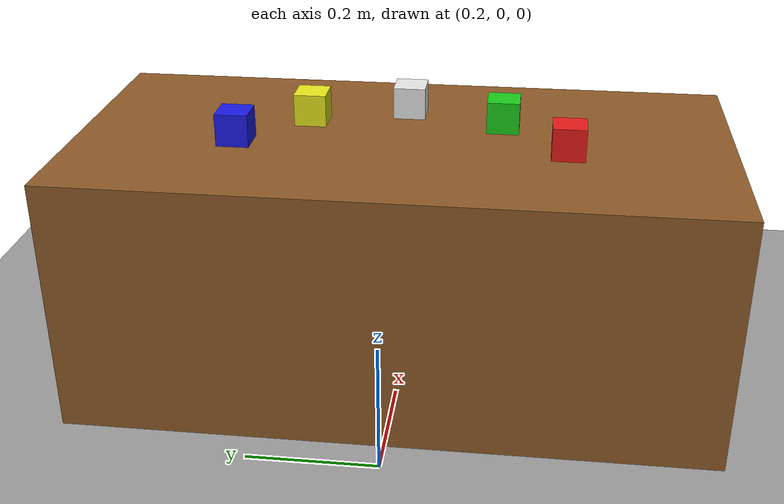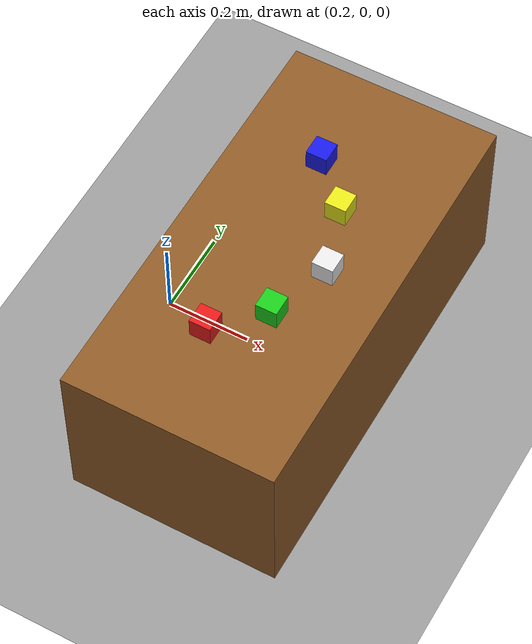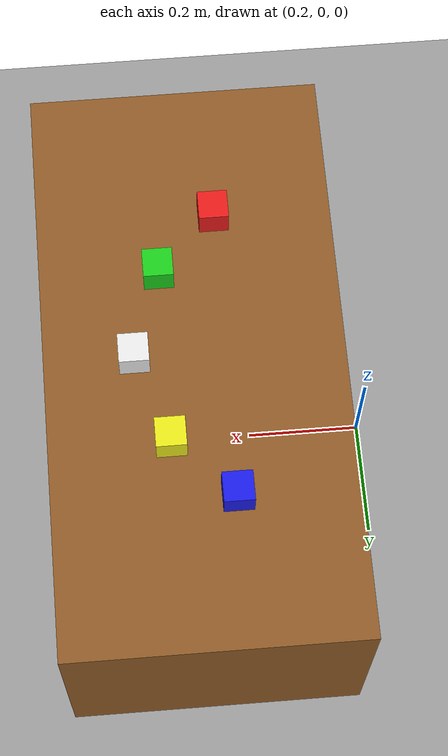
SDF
<?xml version="1.0" ?>
<sdf version="1.9">
  <world name="langrobot_basic">

    <physics name="1ms" type="ignored">
      <max_step_size>0.001</max_step_size>
      <real_time_factor>1.0</real_time_factor>
    </physics>

    <plugin
      filename="gz-sim-physics-system"
      name="gz::sim::systems::Physics"/>
    <plugin
      filename="gz-sim-sensors-system"
      name="gz::sim::systems::Sensors">
      <render_engine>ogre2</render_engine>
    </plugin>
    <plugin
      filename="gz-sim-scene-broadcaster-system"
      name="gz::sim::systems::SceneBroadcaster"/>
    <plugin
      filename="gz-sim-user-commands-system"
      name="gz::sim::systems::UserCommands"/>

    <light type="directional" name="sun">
      <cast_shadows>true</cast_shadows>
      <pose>0 0 10 0 0 0</pose>
      <diffuse>0.8 0.8 0.8 1</diffuse>
      <specular>0.2 0.2 0.2 1</specular>
      <attenuation>
        <range>1000</range>
        <constant>0.9</constant>
        <linear>0.01</linear>
        <quadratic>0.001</quadratic>
      </attenuation>
      <direction>-0.5 0.1 -0.9</direction>
    </light>

    <model name="ground_plane">
      <static>true</static>
      <link name="link">
        <collision name="collision">
          <geometry>
            <plane><normal>0 0 1</normal><size>10 10</size></plane>
          </geometry>
        </collision>
        <visual name="visual">
          <geometry>
            <plane><normal>0 0 1</normal><size>10 10</size></plane>
          </geometry>
          <material>
            <ambient>0.6 0.6 0.6 1</ambient>
            <diffuse>0.6 0.6 0.6 1</diffuse>
          </material>
        </visual>
      </link>
    </model>

    <!-- ── Table ─────────────────────────────────────────────────────────── -->
    <!-- Solid oak-coloured box. Centre at (0.5, 0, 0.2); top surface at z=0.4 m. -->
    <!-- Coordinates match scene.py: TABLE_POSE_XYZ=(0.5,0,0.2), TABLE_SIZE_XYZ=(0.5,1.0,0.4) -->
    <model name="table">
      <static>true</static>
      <pose>0.5 0 0.2 0 0 0</pose>
      <link name="link">
        <collision name="collision">
          <geometry><box><size>0.5 1.0 0.4</size></box></geometry>
        </collision>
        <visual name="visual">
          <geometry><box><size>0.5 1.0 0.4</size></box></geometry>
          <material>
            <ambient>0.55 0.35 0.15 1</ambient>
            <diffuse>0.55 0.35 0.15 1</diffuse>
            <specular>0.08 0.08 0.08 1</specular>
          </material>
        </visual>
      </link>
    </model>

    <!-- ── Blocks (5 cm cubes, resting on table top at z=0.425) ─────── -->
    <!-- Coordinates match scene.py BLOCK_POSITIONS -->
    <model name="block_red">
      <pose>0.45 -0.25 0.425 0 0 0</pose>
      <link name="link">
        <inertial>
          <mass>0.05</mass>
          <inertia>
            <ixx>2.083e-5</ixx><ixy>0</ixy><ixz>0</ixz>
            <iyy>2.083e-5</iyy><iyz>0</iyz>
            <izz>2.083e-5</izz>
          </inertia>
        </inertial>
        <collision name="collision">
          <geometry><box><size>0.05 0.05 0.05</size></box></geometry>
          <surface>
            <friction><ode><mu>1.5</mu><mu2>1.5</mu2></ode></friction>
          </surface>
        </collision>
        <visual name="visual">
          <geometry><box><size>0.05 0.05 0.05</size></box></geometry>
          <material>
            <ambient>0.9 0.1 0.1 1</ambient>
            <diffuse>0.9 0.1 0.1 1</diffuse>
            <specular>0.3 0.3 0.3 1</specular>
          </material>
        </visual>
      </link>
    </model>

    <model name="block_blue">
      <pose>0.45 0.25 0.425 0 0 0</pose>
      <link name="link">
        <inertial>
          <mass>0.05</mass>
          <inertia>
            <ixx>2.083e-5</ixx><ixy>0</ixy><ixz>0</ixz>
            <iyy>2.083e-5</iyy><iyz>0</iyz>
            <izz>2.083e-5</izz>
          </inertia>
        </inertial>
        <collision name="collision">
          <geometry><box><size>0.05 0.05 0.05</size></box></geometry>
          <surface>
            <friction><ode><mu>1.5</mu><mu2>1.5</mu2></ode></friction>
          </surface>
        </collision>
        <visual name="visual">
          <geometry><box><size>0.05 0.05 0.05</size></box></geometry>
          <material>
            <ambient>0.1 0.1 0.9 1</ambient>
            <diffuse>0.1 0.1 0.9 1</diffuse>
            <specular>0.3 0.3 0.3 1</specular>
          </material>
        </visual>
      </link>
    </model>

    <model name="block_green">
      <pose>0.55 -0.15 0.425 0 0 0</pose>
      <link name="link">
        <inertial>
          <mass>0.05</mass>
          <inertia>
            <ixx>2.083e-5</ixx><ixy>0</ixy><ixz>0</ixz>
            <iyy>2.083e-5</iyy><iyz>0</iyz>
            <izz>2.083e-5</izz>
          </inertia>
        </inertial>
        <collision name="collision">
          <geometry><box><size>0.05 0.05 0.05</size></box></geometry>
          <surface>
            <friction><ode><mu>1.5</mu><mu2>1.5</mu2></ode></friction>
          </surface>
        </collision>
        <visual name="visual">
          <geometry><box><size>0.05 0.05 0.05</size></box></geometry>
          <material>
            <ambient>0.1 0.8 0.1 1</ambient>
            <diffuse>0.1 0.8 0.1 1</diffuse>
            <specular>0.3 0.3 0.3 1</specular>
          </material>
        </visual>
      </link>
    </model>

    <model name="block_yellow">
      <pose>0.55 0.15 0.425 0 0 0</pose>
      <link name="link">
        <inertial>
          <mass>0.05</mass>
          <inertia>
            <ixx>2.083e-5</ixx><ixy>0</ixy><ixz>0</ixz>
            <iyy>2.083e-5</iyy><iyz>0</iyz>
            <izz>2.083e-5</izz>
          </inertia>
        </inertial>
        <collision name="collision">
          <geometry><box><size>0.05 0.05 0.05</size></box></geometry>
          <surface>
            <friction><ode><mu>1.5</mu><mu2>1.5</mu2></ode></friction>
          </surface>
        </collision>
        <visual name="visual">
          <geometry><box><size>0.05 0.05 0.05</size></box></geometry>
          <material>
            <ambient>0.9 0.9 0.1 1</ambient>
            <diffuse>0.9 0.9 0.1 1</diffuse>
            <specular>0.3 0.3 0.3 1</specular>
          </material>
        </visual>
      </link>
    </model>

    <model name="block_white">
      <pose>0.60 0.0 0.425 0 0 0</pose>
      <link name="link">
        <inertial>
          <mass>0.05</mass>
          <inertia>
            <ixx>2.083e-5</ixx><ixy>0</ixy><ixz>0</ixz>
            <iyy>2.083e-5</iyy><iyz>0</iyz>
            <izz>2.083e-5</izz>
          </inertia>
        </inertial>
        <collision name="collision">
          <geometry><box><size>0.05 0.05 0.05</size></box></geometry>
          <surface>
            <friction><ode><mu>1.5</mu><mu2>1.5</mu2></ode></friction>
          </surface>
        </collision>
        <visual name="visual">
          <geometry><box><size>0.05 0.05 0.05</size></box></geometry>
          <material>
            <ambient>0.9 0.9 0.9 1</ambient>
            <diffuse>0.9 0.9 0.9 1</diffuse>
            <specular>0.5 0.5 0.5 1</specular>  <!-- higher than other blocks: white benefits from stronger highlight -->
          </material>
        </visual>
      </link>
    </model>

    <!-- ── Overhead RGB-D camera ──────────────────────────────────────── -->
    <!-- Position matches scene.py: CAMERA_POSE_XYZ=(0.5, 0, 1.5)         -->
    <!-- Pitch = π/2 (1.5708) rotates the +X optical axis to point −Z      -->
    <!-- (straight down). The Sensors system plugin (already enabled in     -->
    <!-- this world) is required for the sensor to publish.                 -->
    <!-- rgbd_camera publishes to these Gazebo topics:                       -->
    <!--   /camera/image          — RGB (gz.msgs.Image)                      -->
    <!--   /camera/depth_image    — Depth (gz.msgs.Image)                    -->
    <!--   /camera/camera_info    — CameraInfo (gz.msgs.CameraInfo)          -->
    <!-- These are bridged to ROS2 in langrobot.launch.py.                   -->
    <model name="overhead_camera">
      <static>true</static>
      <pose>0.5 0 1.5 0 1.5708 0</pose>
      <link name="link">
        <sensor name="camera_sensor" type="rgbd_camera">
          <always_on>true</always_on>
          <update_rate>30</update_rate>
          <topic>camera</topic>
          <camera name="overhead">
            <horizontal_fov>1.047</horizontal_fov>
            <image>
              <width>640</width>
              <height>480</height>
              <format>R8G8B8</format>
            </image>
            <clip>
              <near>0.1</near>
              <far>3.0</far>  <!-- camera is 1.5 m overhead; 3 m gives adequate margin with better depth precision -->
            </clip>
          </camera>
        </sensor>
      </link>
    </model>

  </world>
</sdf>
